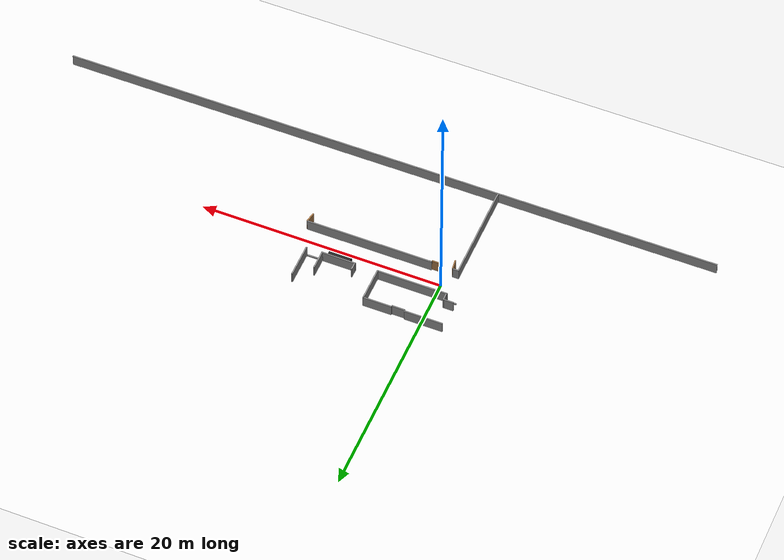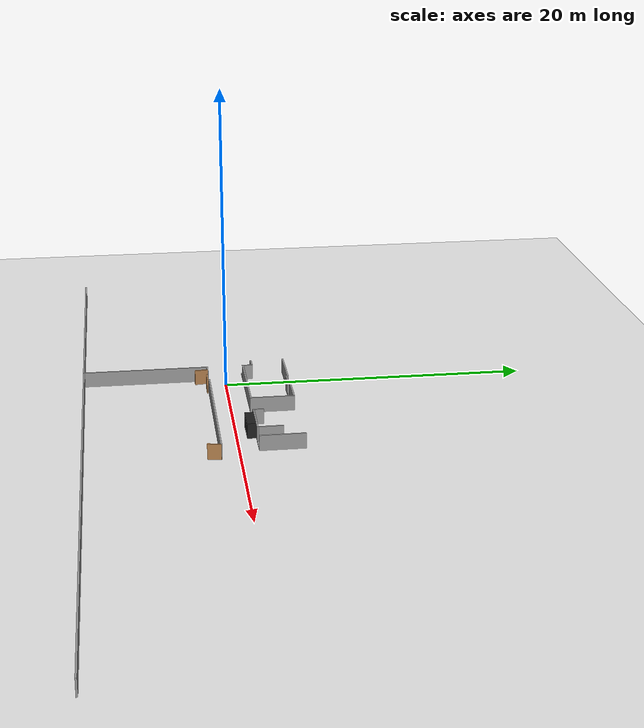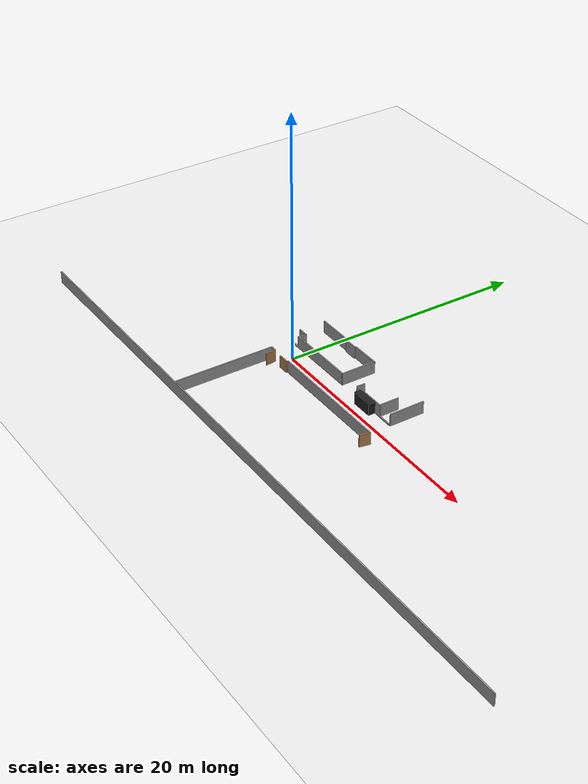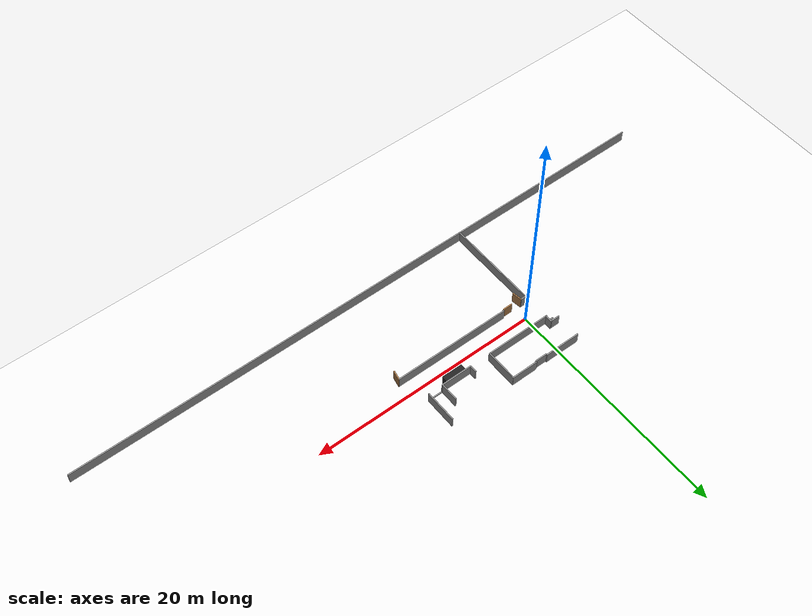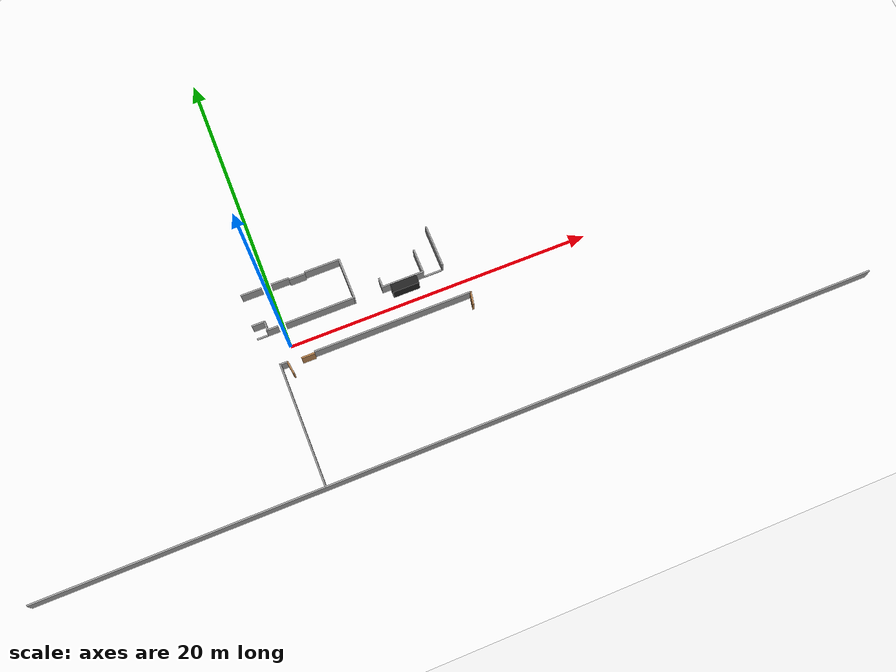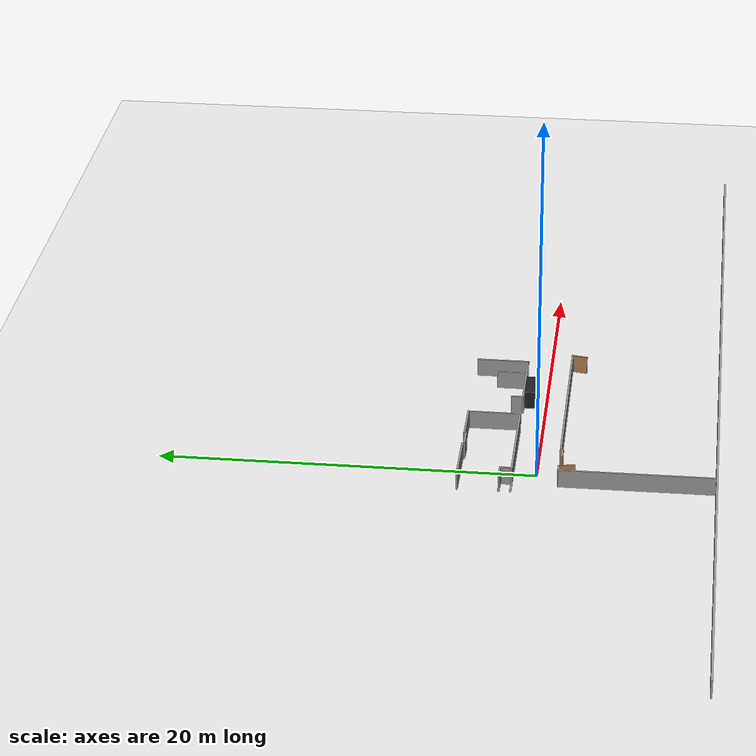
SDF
<sdf version="1.6">
 <world name="default">
  <model name="ground_plane">
   <static>1</static>
   <link name="link">
    <collision name="collision">
     <geometry><plane><normal>0 0 1</normal><size>100 100</size></plane></geometry>
     <surface><friction><ode><mu>100</mu><mu2>50</mu2></ode></friction></surface>
    </collision>
    <visual name="visual">
     <cast_shadows>0</cast_shadows>
     <geometry><plane><normal>0 0 1</normal><size>100 100</size></plane></geometry>
     <material>
      <script><uri>file://media/materials/scripts/gazebo.material</uri><name>Gazebo/WhiteGlow</name></script>
     </material>
    </visual>
   </link>
  </model>
  <model name="L81">
   <link name="link_1_clone_0_clone">
    <pose>16.2726 26.6377 0.017394 0 -0 0</pose>
    <inertial>
     <mass>0.986228</mass>
     <inertia>
      <ixx>0.335977</ixx>
      <ixy>0</ixy>
      <ixz>0</ixz>
      <iyy>0.108072</iyy>
      <iyz>0</iyz>
      <izz>0.279678</izz>
     </inertia>
    </inertial>
    <visual name="visual">
     <geometry><box><size>0.561225 1.75728 1</size></box></geometry>
     <material>
      <lighting>1</lighting>
      <script><uri>file://media/materials/scripts/gazebo.material</uri><name>Gazebo/Black</name></script>
      <shader type="pixel"><normal_map>__default__</normal_map></shader>
      <ambient>0.3 0.3 0.3 1</ambient>
      <diffuse>0.7 0.7 0.7 1</diffuse>
      <specular>0.01 0.01 0.01 1</specular>
      <emissive>0 0 0 1</emissive>
     </material>
    </visual>
    <collision name="collision">
     <geometry><box><size>0.561225 1.75728 1</size></box></geometry>
     <surface>
      <friction>
       <ode><mu>1</mu><mu2>1</mu2><fdir1>0 0 0</fdir1><slip1>0</slip1><slip2>0</slip2></ode>
       <torsional>
        <coefficient>1</coefficient>
        <patch_radius>0</patch_radius>
        <surface_radius>0</surface_radius>
        <use_patch_radius>1</use_patch_radius>
        <ode><slip>0</slip></ode>
       </torsional>
      </friction>
      <bounce><restitution_coefficient>0</restitution_coefficient><threshold>1e+06</threshold></bounce>
      <contact>
       <collide_without_contact>0</collide_without_contact>
       <collide_without_contact_bitmask>1</collide_without_contact_bitmask>
       <collide_bitmask>1</collide_bitmask>
       <ode>
        <soft_cfm>0</soft_cfm>
        <soft_erp>0.2</soft_erp>
        <kp>1e+13</kp>
        <kd>1</kd>
        <max_vel>0.01</max_vel>
        <min_depth>0</min_depth>
       </ode>
       <bullet>
        <split_impulse>1</split_impulse>
        <split_impulse_penetration_threshold>-0.01</split_impulse_penetration_threshold>
        <soft_cfm>0</soft_cfm>
        <soft_erp>0.2</soft_erp>
        <kp>1e+13</kp>
        <kd>1</kd>
       </bullet>
      </contact>
     </surface>
    </collision>
   </link>
   <link name="link_clone_0_clone_0_clone">
    <pose>18.3475 25.0687 0 0 -0 0</pose>
    <inertial>
     <mass>0.587737</mass>
     <inertia>
      <ixx>5.37342</ixx>
      <ixy>0</ixy>
      <ixz>0</ixz>
      <iyy>0.0494679</iyy>
      <iyz>0</iyz>
      <izz>5.32493</izz>
     </inertia>
    </inertial>
    <visual name="visual">
     <geometry><box><size>0.1 10.4264 1</size></box></geometry>
     <material>
      <script><name>Gazebo/Grey</name><uri>file://media/materials/scripts/gazebo.material</uri></script>
      <shader type="pixel"><normal_map>__default__</normal_map></shader>
      <ambient>0.3 0.3 0.3 1</ambient>
      <diffuse>0.7 0.7 0.7 1</diffuse>
      <specular>0.01 0.01 0.01 1</specular>
      <emissive>0 0 0 1</emissive>
     </material>
    </visual>
    <collision name="collision">
     <geometry><box><size>0.1 10.4264 1</size></box></geometry>
     <surface>
      <friction>
       <ode><mu>1</mu><mu2>1</mu2><fdir1>0 0 0</fdir1><slip1>0</slip1><slip2>0</slip2></ode>
       <torsional>
        <coefficient>1</coefficient>
        <patch_radius>0</patch_radius>
        <surface_radius>0</surface_radius>
        <use_patch_radius>1</use_patch_radius>
        <ode><slip>0</slip></ode>
       </torsional>
      </friction>
      <bounce><restitution_coefficient>0</restitution_coefficient><threshold>1e+06</threshold></bounce>
      <contact>
       <collide_without_contact>0</collide_without_contact>
       <collide_without_contact_bitmask>1</collide_without_contact_bitmask>
       <collide_bitmask>1</collide_bitmask>
       <ode>
        <soft_cfm>0</soft_cfm>
        <soft_erp>0.2</soft_erp>
        <kp>1e+13</kp>
        <kd>1</kd>
        <max_vel>0.01</max_vel>
        <min_depth>0</min_depth>
       </ode>
       <bullet>
        <split_impulse>1</split_impulse>
        <split_impulse_penetration_threshold>-0.01</split_impulse_penetration_threshold>
        <soft_cfm>0</soft_cfm>
        <soft_erp>0.2</soft_erp>
        <kp>1e+13</kp>
        <kd>1</kd>
       </bullet>
      </contact>
     </surface>
    </collision>
   </link>
   <link name="link_clone_0_clone_0_clone_clone_0_clone">
    <pose>18.3483 17.8532 0 0 -0 0</pose>
    <inertial>
     <mass>0.0290204</mass>
     <inertia>
      <ixx>0.00305935</ixx>
      <ixy>0</ixy>
      <ixz>0</ixz>
      <iyy>0.00244255</iyy>
      <iyz>0</iyz>
      <izz>0.000665168</izz>
     </inertia>
    </inertial>
    <visual name="visual">
     <geometry><box><size>0.1 0.514829 1</size></box></geometry>
     <material>
      <script><name>Gazebo/Grey</name><uri>file://media/materials/scripts/gazebo.material</uri></script>
      <shader type="pixel"><normal_map>__default__</normal_map></shader>
      <ambient>0.3 0.3 0.3 1</ambient>
      <diffuse>0.7 0.7 0.7 1</diffuse>
      <specular>0.01 0.01 0.01 1</specular>
      <emissive>0 0 0 1</emissive>
     </material>
    </visual>
    <collision name="collision">
     <geometry><box><size>0.1 0.514829 1</size></box></geometry>
     <surface>
      <friction>
       <ode><mu>1</mu><mu2>1</mu2><fdir1>0 0 0</fdir1><slip1>0</slip1><slip2>0</slip2></ode>
       <torsional>
        <coefficient>1</coefficient>
        <patch_radius>0</patch_radius>
        <surface_radius>0</surface_radius>
        <use_patch_radius>1</use_patch_radius>
        <ode><slip>0</slip></ode>
       </torsional>
      </friction>
      <bounce><restitution_coefficient>0</restitution_coefficient><threshold>1e+06</threshold></bounce>
      <contact>
       <collide_without_contact>0</collide_without_contact>
       <collide_without_contact_bitmask>1</collide_without_contact_bitmask>
       <collide_bitmask>1</collide_bitmask>
       <ode>
        <soft_cfm>0</soft_cfm>
        <soft_erp>0.2</soft_erp>
        <kp>1e+13</kp>
        <kd>1</kd>
        <max_vel>0.01</max_vel>
        <min_depth>0</min_depth>
       </ode>
       <bullet>
        <split_impulse>1</split_impulse>
        <split_impulse_penetration_threshold>-0.01</split_impulse_penetration_threshold>
        <soft_cfm>0</soft_cfm>
        <soft_erp>0.2</soft_erp>
        <kp>1e+13</kp>
        <kd>1</kd>
       </bullet>
      </contact>
     </surface>
    </collision>
   </link>
   <link name="link_clone_0_clone_clone_0_clone_clone_clone_1">
    <pose>15.9429 26.6264 -0 0 -0 0</pose>
    <inertial>
     <mass>1.01517</mass>
     <inertia><ixx>5.4708</ixx><ixy>0</ixy><ixz>0</ixz><iyy>0.0854436</iyy><iyz>0</iyz><izz>5.38705</izz></inertia>
    </inertial>
    <visual name="visual">
     <geometry><box><size>0.1 2.84 1</size></box></geometry>
     <material>
      <script><name>Gazebo/Grey</name><uri>file://media/materials/scripts/gazebo.material</uri></script>
      <shader type="pixel"><normal_map>__default__</normal_map></shader>
      <ambient>0.3 0.3 0.3 1</ambient>
      <diffuse>0.7 0.7 0.7 1</diffuse>
      <specular>0.01 0.01 0.01 1</specular>
      <emissive>0 0 0 1</emissive>
     </material>
    </visual>
    <collision name="collision">
     <geometry><box><size>0.1 2.84 1</size></box></geometry>
     <surface>
      <friction>
       <ode><mu>1</mu><mu2>1</mu2><fdir1>0 0 0</fdir1><slip1>0</slip1><slip2>0</slip2></ode>
       <torsional>
        <coefficient>1</coefficient>
        <patch_radius>0</patch_radius>
        <surface_radius>0</surface_radius>
        <use_patch_radius>1</use_patch_radius>
        <ode><slip>0</slip></ode>
       </torsional>
      </friction>
      <bounce><restitution_coefficient>0</restitution_coefficient><threshold>1e+06</threshold></bounce>
      <contact>
       <collide_without_contact>0</collide_without_contact>
       <collide_without_contact_bitmask>1</collide_without_contact_bitmask>
       <collide_bitmask>1</collide_bitmask>
       <ode>
        <soft_cfm>0</soft_cfm>
        <soft_erp>0.2</soft_erp>
        <kp>1e+13</kp>
        <kd>1</kd>
        <max_vel>0.01</max_vel>
        <min_depth>0</min_depth>
       </ode>
       <bullet>
        <split_impulse>1</split_impulse>
        <split_impulse_penetration_threshold>-0.01</split_impulse_penetration_threshold>
        <soft_cfm>0</soft_cfm>
        <soft_erp>0.2</soft_erp>
        <kp>1e+13</kp>
        <kd>1</kd>
       </bullet>
      </contact>
     </surface>
    </collision>
   </link>
   <link name="link_clone_0_clone_clone_0_clone_clone_clone_1_clone_0_clone_clone_clone_2">
    <pose>15.9397 28.6543 -0.474706 0 -0 0</pose>
    <inertial>
     <mass>0.433251</mass>
     <inertia>
      <ixx>0.0891427</ixx>
      <ixy>0</ixy>
      <ixz>0</ixz>
      <iyy>0.0364653</iyy>
      <iyz>0</iyz>
      <izz>0.0533995</izz>
     </inertia>
    </inertial>
    <visual name="visual">
     <geometry><box><size>0.1 1.21204 0.1</size></box></geometry>
     <material>
      <script><name>Gazebo/Grey</name><uri>file://media/materials/scripts/gazebo.material</uri></script>
      <shader type="pixel"><normal_map>__default__</normal_map></shader>
      <ambient>0.3 0.3 0.3 1</ambient>
      <diffuse>0.7 0.7 0.7 1</diffuse>
      <specular>0.01 0.01 0.01 1</specular>
      <emissive>0 0 0 1</emissive>
     </material>
    </visual>
    <collision name="collision">
     <geometry><box><size>0.1 1.21204 0.1</size></box></geometry>
     <surface>
      <friction>
       <ode><mu>1</mu><mu2>1</mu2><fdir1>0 0 0</fdir1><slip1>0</slip1><slip2>0</slip2></ode>
       <torsional>
        <coefficient>1</coefficient>
        <patch_radius>0</patch_radius>
        <surface_radius>0</surface_radius>
        <use_patch_radius>1</use_patch_radius>
        <ode><slip>0</slip></ode>
       </torsional>
      </friction>
      <bounce><restitution_coefficient>0</restitution_coefficient><threshold>1e+06</threshold></bounce>
      <contact>
       <collide_without_contact>0</collide_without_contact>
       <collide_without_contact_bitmask>1</collide_without_contact_bitmask>
       <collide_bitmask>1</collide_bitmask>
       <ode>
        <soft_cfm>0</soft_cfm>
        <soft_erp>0.2</soft_erp>
        <kp>1e+13</kp>
        <kd>1</kd>
        <max_vel>0.01</max_vel>
        <min_depth>0</min_depth>
       </ode>
       <bullet>
        <split_impulse>1</split_impulse>
        <split_impulse_penetration_threshold>-0.01</split_impulse_penetration_threshold>
        <soft_cfm>0</soft_cfm>
        <soft_erp>0.2</soft_erp>
        <kp>1e+13</kp>
        <kd>1</kd>
       </bullet>
      </contact>
     </surface>
    </collision>
   </link>
   <link name="link_clone_0_clone_clone_0_clone_clone_clone_1_clone_1">
    <pose>15.935 20.4437 0 0 -0 0</pose>
    <inertial>
     <mass>2.06265</mass>
     <inertia><ixx>5.89533</ixx><ixy>0</ixy><ixz>0</ixz><iyy>0.173607</iyy><iyz>0</iyz><izz>5.72516</izz></inertia>
    </inertial>
    <visual name="visual">
     <geometry><box><size>0.1 5.7704 1</size></box></geometry>
     <material>
      <script><name>Gazebo/Grey</name><uri>file://media/materials/scripts/gazebo.material</uri></script>
      <shader type="pixel"><normal_map>__default__</normal_map></shader>
      <ambient>0.3 0.3 0.3 1</ambient>
      <diffuse>0.7 0.7 0.7 1</diffuse>
      <specular>0.01 0.01 0.01 1</specular>
      <emissive>0 0 0 1</emissive>
     </material>
    </visual>
    <collision name="collision">
     <geometry><box><size>0.1 5.7704 1</size></box></geometry>
     <surface>
      <friction>
       <ode><mu>1</mu><mu2>1</mu2><fdir1>0 0 0</fdir1><slip1>0</slip1><slip2>0</slip2></ode>
       <torsional>
        <coefficient>1</coefficient>
        <patch_radius>0</patch_radius>
        <surface_radius>0</surface_radius>
        <use_patch_radius>1</use_patch_radius>
        <ode><slip>0</slip></ode>
       </torsional>
      </friction>
      <bounce><restitution_coefficient>0</restitution_coefficient><threshold>1e+06</threshold></bounce>
      <contact>
       <collide_without_contact>0</collide_without_contact>
       <collide_without_contact_bitmask>1</collide_without_contact_bitmask>
       <collide_bitmask>1</collide_bitmask>
       <ode>
        <soft_cfm>0</soft_cfm>
        <soft_erp>0.2</soft_erp>
        <kp>1e+13</kp>
        <kd>1</kd>
        <max_vel>0.01</max_vel>
        <min_depth>0</min_depth>
       </ode>
       <bullet>
        <split_impulse>1</split_impulse>
        <split_impulse_penetration_threshold>-0.01</split_impulse_penetration_threshold>
        <soft_cfm>0</soft_cfm>
        <soft_erp>0.2</soft_erp>
        <kp>1e+13</kp>
        <kd>1</kd>
       </bullet>
      </contact>
     </surface>
    </collision>
   </link>
   <link name="link_clone_0_clone_clone_0_clone_clone_clone_1_clone_1_clone">
    <pose>13.1492 18.4083 0 0 -0 0</pose>
    <inertial>
     <mass>0.481185</mass>
     <inertia>
      <ixx>0.444513</ixx>
      <ixy>0</ixy>
      <ixz>0</ixz>
      <iyy>0.0404997</iyy>
      <iyz>0</iyz>
      <izz>0.404815</izz>
     </inertia>
    </inertial>
    <visual name="visual">
     <geometry><box><size>0.1 3.17576 1</size></box></geometry>
     <material>
      <script><name>Gazebo/Grey</name><uri>file://media/materials/scripts/gazebo.material</uri></script>
      <shader type="pixel"><normal_map>__default__</normal_map></shader>
      <ambient>0.3 0.3 0.3 1</ambient>
      <diffuse>0.7 0.7 0.7 1</diffuse>
      <specular>0.01 0.01 0.01 1</specular>
      <emissive>0 0 0 1</emissive>
     </material>
    </visual>
    <collision name="collision">
     <geometry><box><size>0.1 3.17576 1</size></box></geometry>
     <surface>
      <friction>
       <ode><mu>1</mu><mu2>1</mu2><fdir1>0 0 0</fdir1><slip1>0</slip1><slip2>0</slip2></ode>
       <torsional>
        <coefficient>1</coefficient>
        <patch_radius>0</patch_radius>
        <surface_radius>0</surface_radius>
        <use_patch_radius>1</use_patch_radius>
        <ode><slip>0</slip></ode>
       </torsional>
      </friction>
      <bounce><restitution_coefficient>0</restitution_coefficient><threshold>1e+06</threshold></bounce>
      <contact>
       <collide_without_contact>0</collide_without_contact>
       <collide_without_contact_bitmask>1</collide_without_contact_bitmask>
       <collide_bitmask>1</collide_bitmask>
       <ode>
        <soft_cfm>0</soft_cfm>
        <soft_erp>0.2</soft_erp>
        <kp>1e+13</kp>
        <kd>1</kd>
        <max_vel>0.01</max_vel>
        <min_depth>0</min_depth>
       </ode>
       <bullet>
        <split_impulse>1</split_impulse>
        <split_impulse_penetration_threshold>-0.01</split_impulse_penetration_threshold>
        <soft_cfm>0</soft_cfm>
        <soft_erp>0.2</soft_erp>
        <kp>1e+13</kp>
        <kd>1</kd>
       </bullet>
      </contact>
     </surface>
    </collision>
   </link>
   <link name="link_clone_0_clone_clone_0_clone_clone_clone_1_clone_1_clone_0">
    <pose>15.9337 17.1991 -0.452764 0 -0 0</pose>
    <inertial>
     <mass>0.276563</mass>
     <inertia>
      <ixx>0.0368434</ixx>
      <ixy>0</ixy>
      <ixz>0</ixz>
      <iyy>0.0232774</iyy>
      <iyz>0</iyz>
      <izz>0.0140269</izz>
     </inertia>
    </inertial>
    <visual name="visual">
     <geometry><box><size>0.1 0.773708 0.1</size></box></geometry>
     <material>
      <script><name>Gazebo/Grey</name><uri>file://media/materials/scripts/gazebo.material</uri></script>
      <shader type="pixel"><normal_map>__default__</normal_map></shader>
      <ambient>0.3 0.3 0.3 1</ambient>
      <diffuse>0.7 0.7 0.7 1</diffuse>
      <specular>0.01 0.01 0.01 1</specular>
      <emissive>0 0 0 1</emissive>
     </material>
    </visual>
    <collision name="collision">
     <geometry><box><size>0.1 0.773708 0.1</size></box></geometry>
     <surface>
      <friction>
       <ode><mu>1</mu><mu2>1</mu2><fdir1>0 0 0</fdir1><slip1>0</slip1><slip2>0</slip2></ode>
       <torsional>
        <coefficient>1</coefficient>
        <patch_radius>0</patch_radius>
        <surface_radius>0</surface_radius>
        <use_patch_radius>1</use_patch_radius>
        <ode><slip>0</slip></ode>
       </torsional>
      </friction>
      <bounce><restitution_coefficient>0</restitution_coefficient><threshold>1e+06</threshold></bounce>
      <contact>
       <collide_without_contact>0</collide_without_contact>
       <collide_without_contact_bitmask>1</collide_without_contact_bitmask>
       <collide_bitmask>1</collide_bitmask>
       <ode>
        <soft_cfm>0</soft_cfm>
        <soft_erp>0.2</soft_erp>
        <kp>1e+13</kp>
        <kd>1</kd>
        <max_vel>0.01</max_vel>
        <min_depth>0</min_depth>
       </ode>
       <bullet>
        <split_impulse>1</split_impulse>
        <split_impulse_penetration_threshold>-0.01</split_impulse_penetration_threshold>
        <soft_cfm>0</soft_cfm>
        <soft_erp>0.2</soft_erp>
        <kp>1e+13</kp>
        <kd>1</kd>
       </bullet>
      </contact>
     </surface>
    </collision>
   </link>
   <link name="link_clone_0_clone_clone_0_clone_clone_clone_1_clone_1_clone_1">
    <pose>15.3288 17.2062 -0 0 -0 0</pose>
    <inertial>
     <mass>0.280727</mass>
     <inertia>
      <ixx>0.0378227</ixx>
      <ixy>0</ixy>
      <ixz>0</ixz>
      <iyy>0.0236278</iyy>
      <iyz>0</iyz>
      <izz>0.0146627</izz>
     </inertia>
    </inertial>
    <visual name="visual">
     <geometry><box><size>0.1 0.78535 1</size></box></geometry>
     <material>
      <script><name>Gazebo/Grey</name><uri>file://media/materials/scripts/gazebo.material</uri></script>
      <shader type="pixel"><normal_map>__default__</normal_map></shader>
      <ambient>0.3 0.3 0.3 1</ambient>
      <diffuse>0.7 0.7 0.7 1</diffuse>
      <specular>0.01 0.01 0.01 1</specular>
      <emissive>0 0 0 1</emissive>
     </material>
    </visual>
    <collision name="collision">
     <geometry><box><size>0.1 0.78535 1</size></box></geometry>
     <surface>
      <friction>
       <ode><mu>1</mu><mu2>1</mu2><fdir1>0 0 0</fdir1><slip1>0</slip1><slip2>0</slip2></ode>
       <torsional>
        <coefficient>1</coefficient>
        <patch_radius>0</patch_radius>
        <surface_radius>0</surface_radius>
        <use_patch_radius>1</use_patch_radius>
        <ode><slip>0</slip></ode>
       </torsional>
      </friction>
      <bounce><restitution_coefficient>0</restitution_coefficient><threshold>1e+06</threshold></bounce>
      <contact>
       <collide_without_contact>0</collide_without_contact>
       <collide_without_contact_bitmask>1</collide_without_contact_bitmask>
       <collide_bitmask>1</collide_bitmask>
       <ode>
        <soft_cfm>0</soft_cfm>
        <soft_erp>0.2</soft_erp>
        <kp>1e+13</kp>
        <kd>1</kd>
        <max_vel>0.01</max_vel>
        <min_depth>0</min_depth>
       </ode>
       <bullet>
        <split_impulse>1</split_impulse>
        <split_impulse_penetration_threshold>-0.01</split_impulse_penetration_threshold>
        <soft_cfm>0</soft_cfm>
        <soft_erp>0.2</soft_erp>
        <kp>1e+13</kp>
        <kd>1</kd>
       </bullet>
      </contact>
     </surface>
    </collision>
   </link>
   <link name="link_clone_0_clone_clone_0_clone_clone_clone_1_clone_1_clone_clone_0">
    <pose>13.1532 22.2199 0 0 -0 0</pose>
    <inertial>
     <mass>0.361063</mass>
     <inertia>
      <ixx>0.200949</ixx>
      <ixy>0</ixy>
      <ixz>0</ixz>
      <iyy>0.0303895</iyy>
      <iyz>0</iyz>
      <izz>0.171161</izz>
     </inertia>
    </inertial>
    <visual name="visual">
     <geometry><box><size>0.1 2.38297 1</size></box></geometry>
     <material>
      <script><name>Gazebo/Grey</name><uri>file://media/materials/scripts/gazebo.material</uri></script>
      <shader type="pixel"><normal_map>__default__</normal_map></shader>
      <ambient>0.3 0.3 0.3 1</ambient>
      <diffuse>0.7 0.7 0.7 1</diffuse>
      <specular>0.01 0.01 0.01 1</specular>
      <emissive>0 0 0 1</emissive>
     </material>
    </visual>
    <collision name="collision">
     <geometry><box><size>0.1 2.38297 1</size></box></geometry>
     <surface>
      <friction>
       <ode><mu>1</mu><mu2>1</mu2><fdir1>0 0 0</fdir1><slip1>0</slip1><slip2>0</slip2></ode>
       <torsional>
        <coefficient>1</coefficient>
        <patch_radius>0</patch_radius>
        <surface_radius>0</surface_radius>
        <use_patch_radius>1</use_patch_radius>
        <ode><slip>0</slip></ode>
       </torsional>
      </friction>
      <bounce><restitution_coefficient>0</restitution_coefficient><threshold>1e+06</threshold></bounce>
      <contact>
       <collide_without_contact>0</collide_without_contact>
       <collide_without_contact_bitmask>1</collide_without_contact_bitmask>
       <collide_bitmask>1</collide_bitmask>
       <ode>
        <soft_cfm>0</soft_cfm>
        <soft_erp>0.2</soft_erp>
        <kp>1e+13</kp>
        <kd>1</kd>
        <max_vel>0.01</max_vel>
        <min_depth>0</min_depth>
       </ode>
       <bullet>
        <split_impulse>1</split_impulse>
        <split_impulse_penetration_threshold>-0.01</split_impulse_penetration_threshold>
        <soft_cfm>0</soft_cfm>
        <soft_erp>0.2</soft_erp>
        <kp>1e+13</kp>
        <kd>1</kd>
       </bullet>
      </contact>
     </surface>
    </collision>
   </link>
   <link name="link_clone_0_clone_clone_0_clone_clone_clone_2_clone_clone_clone_0_clone_clone_clone_clone_clone_0_clone">
    <pose>13.2446 20.5097 0 0 -0 0</pose>
    <inertial>
     <mass>1.01517</mass>
     <inertia><ixx>5.4708</ixx><ixy>0</ixy><ixz>0</ixz><iyy>0.0854436</iyy><iyz>0</iyz><izz>5.38705</izz></inertia>
    </inertial>
    <visual name="visual">
     <geometry><box><size>0.1 1.07 1</size></box></geometry>
     <material>
      <script><name>Gazebo/Grey</name><uri>file://media/materials/scripts/gazebo.material</uri></script>
      <shader type="pixel"><normal_map>__default__</normal_map></shader>
      <ambient>0.3 0.3 0.3 1</ambient>
      <diffuse>0.7 0.7 0.7 1</diffuse>
      <specular>0.01 0.01 0.01 1</specular>
      <emissive>0 0 0 1</emissive>
     </material>
    </visual>
    <collision name="collision">
     <geometry><box><size>0.1 1.07 1</size></box></geometry>
     <surface>
      <friction>
       <ode><mu>1</mu><mu2>1</mu2><fdir1>0 0 0</fdir1><slip1>0</slip1><slip2>0</slip2></ode>
       <torsional>
        <coefficient>1</coefficient>
        <patch_radius>0</patch_radius>
        <surface_radius>0</surface_radius>
        <use_patch_radius>1</use_patch_radius>
        <ode><slip>0</slip></ode>
       </torsional>
      </friction>
      <bounce><restitution_coefficient>0</restitution_coefficient><threshold>1e+06</threshold></bounce>
      <contact>
       <collide_without_contact>0</collide_without_contact>
       <collide_without_contact_bitmask>1</collide_without_contact_bitmask>
       <collide_bitmask>1</collide_bitmask>
       <ode>
        <soft_cfm>0</soft_cfm>
        <soft_erp>0.2</soft_erp>
        <kp>1e+13</kp>
        <kd>1</kd>
        <max_vel>0.01</max_vel>
        <min_depth>0</min_depth>
       </ode>
       <bullet>
        <split_impulse>1</split_impulse>
        <split_impulse_penetration_threshold>-0.01</split_impulse_penetration_threshold>
        <soft_cfm>0</soft_cfm>
        <soft_erp>0.2</soft_erp>
        <kp>1e+13</kp>
        <kd>1</kd>
       </bullet>
      </contact>
     </surface>
    </collision>
   </link>
   <link name="link_clone_0_clone_clone_0_clone_clone_clone_2_clone_clone_clone_0_clone_clone_clone_clone_clone_1">
    <pose>18.7497 30.2026 -0 0 -0 -1.76307</pose>
    <inertial>
     <mass>1.01517</mass>
     <inertia><ixx>5.4708</ixx><ixy>0</ixy><ixz>0</ixz><iyy>0.0854436</iyy><iyz>0</iyz><izz>5.38705</izz></inertia>
    </inertial>
    <visual name="visual">
     <geometry><box><size>0.1 0.87 1</size></box></geometry>
     <material>
      <script><name>Gazebo/Wood</name><uri>file://media/materials/scripts/gazebo.material</uri></script>
      <shader type="pixel"><normal_map>__default__</normal_map></shader>
      <ambient>0.3 0.3 0.3 1</ambient>
      <diffuse>0.7 0.7 0.7 1</diffuse>
      <specular>0.01 0.01 0.01 1</specular>
      <emissive>0 0 0 1</emissive>
     </material>
    </visual>
    <collision name="collision">
     <geometry><box><size>0.1 0.87 1</size></box></geometry>
     <surface>
      <friction>
       <ode><mu>1</mu><mu2>1</mu2><fdir1>0 0 0</fdir1><slip1>0</slip1><slip2>0</slip2></ode>
       <torsional>
        <coefficient>1</coefficient>
        <patch_radius>0</patch_radius>
        <surface_radius>0</surface_radius>
        <use_patch_radius>1</use_patch_radius>
        <ode><slip>0</slip></ode>
       </torsional>
      </friction>
      <bounce><restitution_coefficient>0</restitution_coefficient><threshold>1e+06</threshold></bounce>
      <contact>
       <collide_without_contact>0</collide_without_contact>
       <collide_without_contact_bitmask>1</collide_without_contact_bitmask>
       <collide_bitmask>1</collide_bitmask>
       <ode>
        <soft_cfm>0</soft_cfm>
        <soft_erp>0.2</soft_erp>
        <kp>1e+13</kp>
        <kd>1</kd>
        <max_vel>0.01</max_vel>
        <min_depth>0</min_depth>
       </ode>
       <bullet>
        <split_impulse>1</split_impulse>
        <split_impulse_penetration_threshold>-0.01</split_impulse_penetration_threshold>
        <soft_cfm>0</soft_cfm>
        <soft_erp>0.2</soft_erp>
        <kp>1e+13</kp>
        <kd>1</kd>
       </bullet>
      </contact>
     </surface>
    </collision>
   </link>
   <link name="link_clone_0_clone_clone_0_clone_clone_clone_2_clone_clone_clone_0_clone_clone_clone_clone_clone_2">
    <pose>18.7659 18.1722 0 0 0 -1.437</pose>
    <inertial>
     <mass>1.01517</mass>
     <inertia><ixx>5.4708</ixx><ixy>0</ixy><ixz>0</ixz><iyy>0.0854436</iyy><iyz>0</iyz><izz>5.38705</izz></inertia>
    </inertial>
    <visual name="visual">
     <geometry><box><size>0.1 0.87 1</size></box></geometry>
     <material>
      <script><name>Gazebo/Wood</name><uri>file://media/materials/scripts/gazebo.material</uri></script>
      <shader type="pixel"><normal_map>__default__</normal_map></shader>
      <ambient>0.3 0.3 0.3 1</ambient>
      <diffuse>0.7 0.7 0.7 1</diffuse>
      <specular>0.01 0.01 0.01 1</specular>
      <emissive>0 0 0 1</emissive>
     </material>
    </visual>
    <collision name="collision">
     <geometry><box><size>0.1 0.87 1</size></box></geometry>
     <surface>
      <friction>
       <ode><mu>1</mu><mu2>1</mu2><fdir1>0 0 0</fdir1><slip1>0</slip1><slip2>0</slip2></ode>
       <torsional>
        <coefficient>1</coefficient>
        <patch_radius>0</patch_radius>
        <surface_radius>0</surface_radius>
        <use_patch_radius>1</use_patch_radius>
        <ode><slip>0</slip></ode>
       </torsional>
      </friction>
      <bounce><restitution_coefficient>0</restitution_coefficient><threshold>1e+06</threshold></bounce>
      <contact>
       <collide_without_contact>0</collide_without_contact>
       <collide_without_contact_bitmask>1</collide_without_contact_bitmask>
       <collide_bitmask>1</collide_bitmask>
       <ode>
        <soft_cfm>0</soft_cfm>
        <soft_erp>0.2</soft_erp>
        <kp>1e+13</kp>
        <kd>1</kd>
        <max_vel>0.01</max_vel>
        <min_depth>0</min_depth>
       </ode>
       <bullet>
        <split_impulse>1</split_impulse>
        <split_impulse_penetration_threshold>-0.01</split_impulse_penetration_threshold>
        <soft_cfm>0</soft_cfm>
        <soft_erp>0.2</soft_erp>
        <kp>1e+13</kp>
        <kd>1</kd>
       </bullet>
      </contact>
     </surface>
    </collision>
   </link>
   <link name="link_clone_0_clone_clone_0_clone_clone_clone_2_clone_clone_clone_0_clone_clone_clone_clone_clone_3">
    <pose>18.4496 19.4214 0 0 -0 0</pose>
    <inertial>
     <mass>1.01517</mass>
     <inertia><ixx>5.4708</ixx><ixy>0</ixy><ixz>0</ixz><iyy>0.0854436</iyy><iyz>0</iyz><izz>5.38705</izz></inertia>
    </inertial>
    <visual name="visual">
     <geometry><box><size>0.1 0.87 1</size></box></geometry>
     <material>
      <script><name>Gazebo/Wood</name><uri>file://media/materials/scripts/gazebo.material</uri></script>
      <shader type="pixel"><normal_map>__default__</normal_map></shader>
      <ambient>0.3 0.3 0.3 1</ambient>
      <diffuse>0.7 0.7 0.7 1</diffuse>
      <specular>0.01 0.01 0.01 1</specular>
      <emissive>0 0 0 1</emissive>
     </material>
    </visual>
    <collision name="collision">
     <geometry><box><size>0.1 0.87 1</size></box></geometry>
     <surface>
      <friction>
       <ode><mu>1</mu><mu2>1</mu2><fdir1>0 0 0</fdir1><slip1>0</slip1><slip2>0</slip2></ode>
       <torsional>
        <coefficient>1</coefficient>
        <patch_radius>0</patch_radius>
        <surface_radius>0</surface_radius>
        <use_patch_radius>1</use_patch_radius>
        <ode><slip>0</slip></ode>
       </torsional>
      </friction>
      <bounce><restitution_coefficient>0</restitution_coefficient><threshold>1e+06</threshold></bounce>
      <contact>
       <collide_without_contact>0</collide_without_contact>
       <collide_without_contact_bitmask>1</collide_without_contact_bitmask>
       <collide_bitmask>1</collide_bitmask>
       <ode>
        <soft_cfm>0</soft_cfm>
        <soft_erp>0.2</soft_erp>
        <kp>1e+13</kp>
        <kd>1</kd>
        <max_vel>0.01</max_vel>
        <min_depth>0</min_depth>
       </ode>
       <bullet>
        <split_impulse>1</split_impulse>
        <split_impulse_penetration_threshold>-0.01</split_impulse_penetration_threshold>
        <soft_cfm>0</soft_cfm>
        <soft_erp>0.2</soft_erp>
        <kp>1e+13</kp>
        <kd>1</kd>
       </bullet>
      </contact>
     </surface>
    </collision>
   </link>
   <link name="link_clone_1">
    <pose>26.5466 26.8153 -0 0 -0 0</pose>
    <inertial>
     <mass>3.00347</mass>
     <inertia><ixx>748.132</ixx><ixy>0</ixy><ixz>0</ixz><iyy>0.252792</iyy><iyz>0</iyz><izz>747.884</izz></inertia>
    </inertial>
    <visual name="visual">
     <geometry><box><size>0.1 54.6632 1</size></box></geometry>
     <material>
      <script><name>Gazebo/Grey</name><uri>file://media/materials/scripts/gazebo.material</uri></script>
      <shader type="pixel"><normal_map>__default__</normal_map></shader>
      <ambient>0.3 0.3 0.3 1</ambient>
      <diffuse>0.7 0.7 0.7 1</diffuse>
      <specular>0.01 0.01 0.01 1</specular>
      <emissive>0 0 0 1</emissive>
     </material>
    </visual>
    <collision name="collision">
     <geometry><box><size>0.1 54.6632 1</size></box></geometry>
     <surface>
      <friction>
       <ode><mu>1</mu><mu2>1</mu2><fdir1>0 0 0</fdir1><slip1>0</slip1><slip2>0</slip2></ode>
       <torsional>
        <coefficient>1</coefficient>
        <patch_radius>0</patch_radius>
        <surface_radius>0</surface_radius>
        <use_patch_radius>1</use_patch_radius>
        <ode><slip>0</slip></ode>
       </torsional>
      </friction>
      <bounce><restitution_coefficient>0</restitution_coefficient><threshold>1e+06</threshold></bounce>
      <contact>
       <collide_without_contact>0</collide_without_contact>
       <collide_without_contact_bitmask>1</collide_without_contact_bitmask>
       <collide_bitmask>1</collide_bitmask>
       <ode>
        <soft_cfm>0</soft_cfm>
        <soft_erp>0.2</soft_erp>
        <kp>1e+13</kp>
        <kd>1</kd>
        <max_vel>0.01</max_vel>
        <min_depth>0</min_depth>
       </ode>
       <bullet>
        <split_impulse>1</split_impulse>
        <split_impulse_penetration_threshold>-0.01</split_impulse_penetration_threshold>
        <soft_cfm>0</soft_cfm>
        <soft_erp>0.2</soft_erp>
        <kp>1e+13</kp>
        <kd>1</kd>
       </bullet>
      </contact>
     </surface>
    </collision>
   </link>
   <link name="link_clone_clone">
    <pose>22.4518 17.6437 0 0 -0 0</pose>
    <inertial>
     <mass>1.18675</mass>
     <inertia>
      <ixx>0.0998844</ixx>
      <ixy>0</ixy>
      <ixz>0</ixz>
      <iyy>6.74929</iyy>
      <iyz>0</iyz>
      <izz>6.65138</izz>
     </inertia>
    </inertial>
    <visual name="visual">
     <geometry><box><size>8.20041 0.1 1</size></box></geometry>
     <material>
      <script><name>Gazebo/Grey</name><uri>file://media/materials/scripts/gazebo.material</uri></script>
      <shader type="pixel"><normal_map>__default__</normal_map></shader>
      <ambient>0.3 0.3 0.3 1</ambient>
      <diffuse>0.7 0.7 0.7 1</diffuse>
      <specular>0.01 0.01 0.01 1</specular>
      <emissive>0 0 0 1</emissive>
     </material>
    </visual>
    <collision name="collision">
     <geometry><box><size>8.20041 0.1 1</size></box></geometry>
     <surface>
      <friction>
       <ode><mu>1</mu><mu2>1</mu2><fdir1>0 0 0</fdir1><slip1>0</slip1><slip2>0</slip2></ode>
       <torsional>
        <coefficient>1</coefficient>
        <patch_radius>0</patch_radius>
        <surface_radius>0</surface_radius>
        <use_patch_radius>1</use_patch_radius>
        <ode><slip>0</slip></ode>
       </torsional>
      </friction>
      <bounce><restitution_coefficient>0</restitution_coefficient><threshold>1e+06</threshold></bounce>
      <contact>
       <collide_without_contact>0</collide_without_contact>
       <collide_without_contact_bitmask>1</collide_without_contact_bitmask>
       <collide_bitmask>1</collide_bitmask>
       <ode>
        <soft_cfm>0</soft_cfm>
        <soft_erp>0.2</soft_erp>
        <kp>1e+13</kp>
        <kd>1</kd>
        <max_vel>0.01</max_vel>
        <min_depth>0</min_depth>
       </ode>
       <bullet>
        <split_impulse>1</split_impulse>
        <split_impulse_penetration_threshold>-0.01</split_impulse_penetration_threshold>
        <soft_cfm>0</soft_cfm>
        <soft_erp>0.2</soft_erp>
        <kp>1e+13</kp>
        <kd>1</kd>
       </bullet>
      </contact>
     </surface>
    </collision>
   </link>
   <link name="link_clone_clone_clone_clone_0_clone_clone_2">
    <pose>15.6005 25.268 -1e-06 0 -0 0</pose>
    <inertial>
     <mass>0.174115</mass>
     <inertia>
      <ixx>0.0146547</ixx>
      <ixy>0</ixy>
      <ixz>0</ixz>
      <iyy>0.0194752</iyy>
      <iyz>0</iyz>
      <izz>0.00511069</izz>
     </inertia>
    </inertial>
    <visual name="visual">
     <geometry><box><size>0.585002 0.1 1</size></box></geometry>
     <material>
      <script><name>Gazebo/Grey</name><uri>file://media/materials/scripts/gazebo.material</uri></script>
      <shader type="pixel"><normal_map>__default__</normal_map></shader>
      <ambient>0.3 0.3 0.3 1</ambient>
      <diffuse>0.7 0.7 0.7 1</diffuse>
      <specular>0.01 0.01 0.01 1</specular>
      <emissive>0 0 0 1</emissive>
     </material>
    </visual>
    <collision name="collision">
     <geometry><box><size>0.585002 0.1 1</size></box></geometry>
     <surface>
      <friction>
       <ode><mu>1</mu><mu2>1</mu2><fdir1>0 0 0</fdir1><slip1>0</slip1><slip2>0</slip2></ode>
       <torsional>
        <coefficient>1</coefficient>
        <patch_radius>0</patch_radius>
        <surface_radius>0</surface_radius>
        <use_patch_radius>1</use_patch_radius>
        <ode><slip>0</slip></ode>
       </torsional>
      </friction>
      <bounce><restitution_coefficient>0</restitution_coefficient><threshold>1e+06</threshold></bounce>
      <contact>
       <collide_without_contact>0</collide_without_contact>
       <collide_without_contact_bitmask>1</collide_without_contact_bitmask>
       <collide_bitmask>1</collide_bitmask>
       <ode>
        <soft_cfm>0</soft_cfm>
        <soft_erp>0.2</soft_erp>
        <kp>1e+13</kp>
        <kd>1</kd>
        <max_vel>0.01</max_vel>
        <min_depth>0</min_depth>
       </ode>
       <bullet>
        <split_impulse>1</split_impulse>
        <split_impulse_penetration_threshold>-0.01</split_impulse_penetration_threshold>
        <soft_cfm>0</soft_cfm>
        <soft_erp>0.2</soft_erp>
        <kp>1e+13</kp>
        <kd>1</kd>
       </bullet>
      </contact>
     </surface>
    </collision>
   </link>
   <link name="link_clone_clone_clone_clone_0_clone_clone_clone_0">
    <pose>14.5505 23.3681 0 0 -0 0</pose>
    <inertial>
     <mass>0.851308</mass>
     <inertia>
      <ixx>0.0716518</ixx>
      <ixy>0</ixy>
      <ixz>0</ixz>
      <iyy>0.651336</iyy>
      <iyz>0</iyz>
      <izz>0.581103</izz>
     </inertia>
    </inertial>
    <visual name="visual">
     <geometry><box><size>2.86028 0.1 1</size></box></geometry>
     <material>
      <script><name>Gazebo/Grey</name><uri>file://media/materials/scripts/gazebo.material</uri></script>
      <shader type="pixel"><normal_map>__default__</normal_map></shader>
      <ambient>0.3 0.3 0.3 1</ambient>
      <diffuse>0.7 0.7 0.7 1</diffuse>
      <specular>0.01 0.01 0.01 1</specular>
      <emissive>0 0 0 1</emissive>
     </material>
    </visual>
    <collision name="collision">
     <geometry><box><size>2.86028 0.1 1</size></box></geometry>
     <surface>
      <friction>
       <ode><mu>1</mu><mu2>1</mu2><fdir1>0 0 0</fdir1><slip1>0</slip1><slip2>0</slip2></ode>
       <torsional>
        <coefficient>1</coefficient>
        <patch_radius>0</patch_radius>
        <surface_radius>0</surface_radius>
        <use_patch_radius>1</use_patch_radius>
        <ode><slip>0</slip></ode>
       </torsional>
      </friction>
      <bounce><restitution_coefficient>0</restitution_coefficient><threshold>1e+06</threshold></bounce>
      <contact>
       <collide_without_contact>0</collide_without_contact>
       <collide_without_contact_bitmask>1</collide_without_contact_bitmask>
       <collide_bitmask>1</collide_bitmask>
       <ode>
        <soft_cfm>0</soft_cfm>
        <soft_erp>0.2</soft_erp>
        <kp>1e+13</kp>
        <kd>1</kd>
        <max_vel>0.01</max_vel>
        <min_depth>0</min_depth>
       </ode>
       <bullet>
        <split_impulse>1</split_impulse>
        <split_impulse_penetration_threshold>-0.01</split_impulse_penetration_threshold>
        <soft_cfm>0</soft_cfm>
        <soft_erp>0.2</soft_erp>
        <kp>1e+13</kp>
        <kd>1</kd>
       </bullet>
      </contact>
     </surface>
    </collision>
   </link>
   <link name="link_clone_clone_clone_clone_0_clone_clone_clone_0_clone_0">
    <pose>14.5463 29.3056 0 0 -0 0</pose>
    <inertial>
     <mass>0.851308</mass>
     <inertia>
      <ixx>0.0716518</ixx>
      <ixy>0</ixy>
      <ixz>0</ixz>
      <iyy>0.651336</iyy>
      <iyz>0</iyz>
      <izz>0.581103</izz>
     </inertia>
    </inertial>
    <visual name="visual">
     <geometry><box><size>2.86028 0.1 1</size></box></geometry>
     <material>
      <script><name>Gazebo/Grey</name><uri>file://media/materials/scripts/gazebo.material</uri></script>
      <shader type="pixel"><normal_map>__default__</normal_map></shader>
      <ambient>0.3 0.3 0.3 1</ambient>
      <diffuse>0.7 0.7 0.7 1</diffuse>
      <specular>0.01 0.01 0.01 1</specular>
      <emissive>0 0 0 1</emissive>
     </material>
    </visual>
    <collision name="collision">
     <geometry><box><size>2.86028 0.1 1</size></box></geometry>
     <surface>
      <friction>
       <ode><mu>1</mu><mu2>1</mu2><fdir1>0 0 0</fdir1><slip1>0</slip1><slip2>0</slip2></ode>
       <torsional>
        <coefficient>1</coefficient>
        <patch_radius>0</patch_radius>
        <surface_radius>0</surface_radius>
        <use_patch_radius>1</use_patch_radius>
        <ode><slip>0</slip></ode>
       </torsional>
      </friction>
      <bounce><restitution_coefficient>0</restitution_coefficient><threshold>1e+06</threshold></bounce>
      <contact>
       <collide_without_contact>0</collide_without_contact>
       <collide_without_contact_bitmask>1</collide_without_contact_bitmask>
       <collide_bitmask>1</collide_bitmask>
       <ode>
        <soft_cfm>0</soft_cfm>
        <soft_erp>0.2</soft_erp>
        <kp>1e+13</kp>
        <kd>1</kd>
        <max_vel>0.01</max_vel>
        <min_depth>0</min_depth>
       </ode>
       <bullet>
        <split_impulse>1</split_impulse>
        <split_impulse_penetration_threshold>-0.01</split_impulse_penetration_threshold>
        <soft_cfm>0</soft_cfm>
        <soft_erp>0.2</soft_erp>
        <kp>1e+13</kp>
        <kd>1</kd>
       </bullet>
      </contact>
     </surface>
    </collision>
   </link>
   <link name="link_clone_clone_clone_clone_0_clone_clone_clone_0_clone_0_clone">
    <pose>15.1199 27.9959 -0 0 -0 0</pose>
    <inertial>
     <mass>0.464896</mass>
     <inertia>
      <ixx>0.0391287</ixx>
      <ixy>0</ixy>
      <ixz>0</ixz>
      <iyy>0.133262</iyy>
      <iyz>0</iyz>
      <izz>0.0949085</izz>
     </inertia>
    </inertial>
    <visual name="visual">
     <geometry><box><size>1.56199 0.1 1</size></box></geometry>
     <material>
      <script><name>Gazebo/Grey</name><uri>file://media/materials/scripts/gazebo.material</uri></script>
      <shader type="pixel"><normal_map>__default__</normal_map></shader>
      <ambient>0.3 0.3 0.3 1</ambient>
      <diffuse>0.7 0.7 0.7 1</diffuse>
      <specular>0.01 0.01 0.01 1</specular>
      <emissive>0 0 0 1</emissive>
     </material>
    </visual>
    <collision name="collision">
     <geometry><box><size>1.56199 0.1 1</size></box></geometry>
     <surface>
      <friction>
       <ode><mu>1</mu><mu2>1</mu2><fdir1>0 0 0</fdir1><slip1>0</slip1><slip2>0</slip2></ode>
       <torsional>
        <coefficient>1</coefficient>
        <patch_radius>0</patch_radius>
        <surface_radius>0</surface_radius>
        <use_patch_radius>1</use_patch_radius>
        <ode><slip>0</slip></ode>
       </torsional>
      </friction>
      <bounce><restitution_coefficient>0</restitution_coefficient><threshold>1e+06</threshold></bounce>
      <contact>
       <collide_without_contact>0</collide_without_contact>
       <collide_without_contact_bitmask>1</collide_without_contact_bitmask>
       <collide_bitmask>1</collide_bitmask>
       <ode>
        <soft_cfm>0</soft_cfm>
        <soft_erp>0.2</soft_erp>
        <kp>1e+13</kp>
        <kd>1</kd>
        <max_vel>0.01</max_vel>
        <min_depth>0</min_depth>
       </ode>
       <bullet>
        <split_impulse>1</split_impulse>
        <split_impulse_penetration_threshold>-0.01</split_impulse_penetration_threshold>
        <soft_cfm>0</soft_cfm>
        <soft_erp>0.2</soft_erp>
        <kp>1e+13</kp>
        <kd>1</kd>
       </bullet>
      </contact>
     </surface>
    </collision>
   </link>
   <link name="link_clone_clone_clone_clone_0_clone_clone_clone_0_clone_clone">
    <pose>15.6303 17.6419 0 0 -0 0</pose>
    <inertial>
     <mass>0.206699</mass>
     <inertia>
      <ixx>0.0173972</ixx>
      <ixy>0</ixy>
      <ixz>0</ixz>
      <iyy>0.0255325</iyy>
      <iyz>0</iyz>
      <izz>0.00847981</izz>
     </inertia>
    </inertial>
    <visual name="visual">
     <geometry><box><size>0.694477 0.1 1</size></box></geometry>
     <material>
      <script><name>Gazebo/Grey</name><uri>file://media/materials/scripts/gazebo.material</uri></script>
      <shader type="pixel"><normal_map>__default__</normal_map></shader>
      <ambient>0.3 0.3 0.3 1</ambient>
      <diffuse>0.7 0.7 0.7 1</diffuse>
      <specular>0.01 0.01 0.01 1</specular>
      <emissive>0 0 0 1</emissive>
     </material>
    </visual>
    <collision name="collision">
     <geometry><box><size>0.694477 0.1 1</size></box></geometry>
     <surface>
      <friction>
       <ode><mu>1</mu><mu2>1</mu2><fdir1>0 0 0</fdir1><slip1>0</slip1><slip2>0</slip2></ode>
       <torsional>
        <coefficient>1</coefficient>
        <patch_radius>0</patch_radius>
        <surface_radius>0</surface_radius>
        <use_patch_radius>1</use_patch_radius>
        <ode><slip>0</slip></ode>
       </torsional>
      </friction>
      <bounce><restitution_coefficient>0</restitution_coefficient><threshold>1e+06</threshold></bounce>
      <contact>
       <collide_without_contact>0</collide_without_contact>
       <collide_without_contact_bitmask>1</collide_without_contact_bitmask>
       <collide_bitmask>1</collide_bitmask>
       <ode>
        <soft_cfm>0</soft_cfm>
        <soft_erp>0.2</soft_erp>
        <kp>1e+13</kp>
        <kd>1</kd>
        <max_vel>0.01</max_vel>
        <min_depth>0</min_depth>
       </ode>
       <bullet>
        <split_impulse>1</split_impulse>
        <split_impulse_penetration_threshold>-0.01</split_impulse_penetration_threshold>
        <soft_cfm>0</soft_cfm>
        <soft_erp>0.2</soft_erp>
        <kp>1e+13</kp>
        <kd>1</kd>
       </bullet>
      </contact>
     </surface>
    </collision>
   </link>
   <static>1</static>
   <pose>-18.6342 17.1649 0.502995 -9.9e-05 2e-06 -1.56996</pose>
  </model>
 </world>
</sdf>
